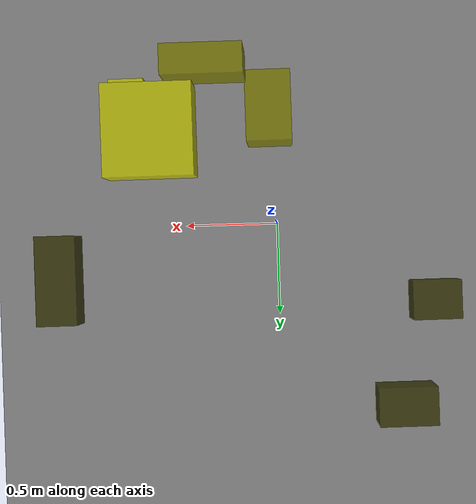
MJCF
<?xml version="1.0"?>
<mujoco model="obstacle_scene">
  <compiler angle="radian" coordinate="local"/>
  <option timestep="0.001" gravity="0 0 -9.81"/>

  <asset>
    <material name="obstacle_mat" rgba="0.8 0.8 0.0 0.8"/>
    <material name="ground_mat" rgba="0.5 0.5 0.5 1"/>
  </asset>

  <worldbody>
    <!-- Ground plane -->
    <geom name="ground" type="plane" size="3 3 0.1" material="ground_mat"/>

    <!-- Obstacles -->
    <body name="obstacle_0" pos="0.791454 0.230355 1.277486">
      <geom name="obs_0" type="box" size="0.073873 0.163620 0.046493" rgba="0.2 0.2 0.0 0.8"/>
    </body>
    <body name="obstacle_1" pos="0.018046 -0.551539 0.417449">
      <geom name="obs_1" type="box" size="0.110425 0.170232 0.108864" rgba="0.5 0.5 0.0 0.8"/>
    </body>
    <body name="obstacle_2" pos="0.740370 -0.581881 0.257906">
      <geom name="obs_2" type="box" size="0.087799 0.162074 0.082777" rgba="0.8 0.8 0.0 0.8"/>
    </body>
    <body name="obstacle_3" pos="-0.613798 0.923075 0.434001">
      <geom name="obs_3" type="box" size="0.142779 0.093098 0.081789" rgba="0.2 0.2 0.0 0.8"/>
    </body>
    <body name="obstacle_4" pos="0.287298 -0.673353 0.837934">
      <geom name="obs_4" type="box" size="0.176427 0.066003 0.092291" rgba="0.5 0.5 0.0 0.8"/>
    </body>
    <body name="obstacle_5" pos="0.500555 -0.361259 0.980737">
      <geom name="obs_5" type="box" size="0.185460 0.191146 0.063063" rgba="0.8 0.8 0.0 0.8"/>
    </body>
    <body name="obstacle_6" pos="-0.834444 0.437162 0.130815">
      <geom name="obs_6" type="box" size="0.127732 0.103212 0.079783" rgba="0.2 0.2 0.0 0.8"/>
    </body>
  </worldbody>
</mujoco>
